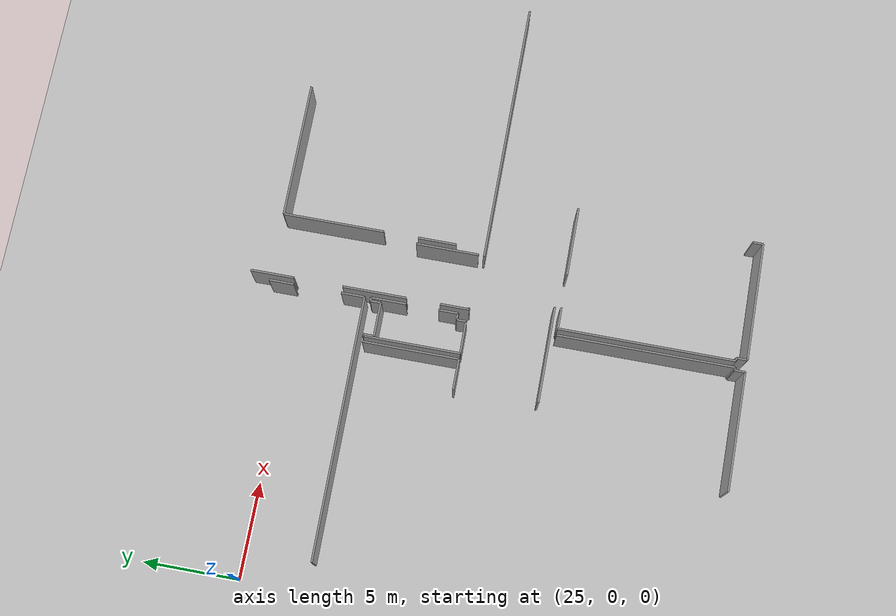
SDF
<sdf version="1.6">
 <world name="default">
  <model name="ground_plane">
   <static>1</static>
   <link name="link">
    <collision name="collision">
     <geometry><plane><normal>0 0 1</normal><size>100 100</size></plane></geometry>
     <surface><friction><ode><mu>100</mu><mu2>50</mu2></ode></friction></surface>
    </collision>
    <visual name="visual">
     <cast_shadows>0</cast_shadows>
     <geometry><plane><normal>0 0 1</normal><size>100 100</size></plane></geometry>
     <material>
      <script><uri>file://media/materials/scripts/gazebo.material</uri><name>Gazebo/Grey</name></script>
     </material>
    </visual>
   </link>
  </model>
  <model name="0510032192_A_40_1_203">
   <static>1</static>
   <link name="Wall_131">
    <collision name="Wall_131_Collision">
     <geometry><box><size>9.19214320664 0.1 2.5</size></box></geometry>
     <pose>4.59607160332 0 1.25 0 0 0</pose>
    </collision>
    <visual name="Wall_131_Visual">
     <pose>4.59607160332 0 1.25 0 0 0</pose>
     <geometry><box><size>9.19214320664 0.1 2.5</size></box></geometry>
     <material>
      <script><uri>file://media/materials/scripts/gazebo.material</uri><name>Gazebo/Grey</name></script>
      <ambient>1 1 1 1</ambient>
     </material>
    </visual>
    <pose>104.444642142 -36.9956471179 0 0 0 -1.57079632679</pose>
   </link>
   <link name="Wall_132">
    <collision name="Wall_132_Collision">
     <geometry><box><size>0.153780652869 0.1 2.5</size></box></geometry>
     <pose>0.0768903264344 0 1.25 0 0 0</pose>
    </collision>
    <visual name="Wall_132_Visual">
     <pose>0.0768903264344 0 1.25 0 0 0</pose>
     <geometry><box><size>0.153780652869 0.1 2.5</size></box></geometry>
     <material>
      <script><uri>file://media/materials/scripts/gazebo.material</uri><name>Gazebo/Grey</name></script>
      <ambient>1 1 1 1</ambient>
     </material>
    </visual>
    <pose>104.444642142 -46.1877903245 0 0 0 3.14159265359</pose>
   </link>
   <link name="Wall_133">
    <collision name="Wall_133_Collision">
     <geometry><box><size>0.528573334943 0.1 2.5</size></box></geometry>
     <pose>0.264286667472 0 1.25 0 0 0</pose>
    </collision>
    <visual name="Wall_133_Visual">
     <pose>0.264286667472 0 1.25 0 0 0</pose>
     <geometry><box><size>0.528573334943 0.1 2.5</size></box></geometry>
     <material>
      <script><uri>file://media/materials/scripts/gazebo.material</uri><name>Gazebo/Grey</name></script>
      <ambient>1 1 1 1</ambient>
     </material>
    </visual>
    <pose>104.290861489 -46.1877903245 0 0 0 -1.57079632679</pose>
   </link>
   <link name="Wall_134">
    <collision name="Wall_134_Collision">
     <geometry><box><size>6.16025778958 0.1 2.5</size></box></geometry>
     <pose>3.08012889479 0 1.25 0 0 0</pose>
    </collision>
    <visual name="Wall_134_Visual">
     <pose>3.08012889479 0 1.25 0 0 0</pose>
     <geometry><box><size>6.16025778958 0.1 2.5</size></box></geometry>
     <material>
      <script><uri>file://media/materials/scripts/gazebo.material</uri><name>Gazebo/Grey</name></script>
      <ambient>1 1 1 1</ambient>
     </material>
    </visual>
    <pose>104.290861489 -46.7163636595 0 0 0 -3.13996281451</pose>
   </link>
   <link name="Wall_135">
    <collision name="Wall_135_Collision">
     <geometry><box><size>0.559202374068 0.1 2.5</size></box></geometry>
     <pose>0.279601187034 0 1.25 0 0 0</pose>
    </collision>
    <visual name="Wall_135_Visual">
     <pose>0.279601187034 0 1.25 0 0 0</pose>
     <geometry><box><size>0.559202374068 0.1 2.5</size></box></geometry>
     <material>
      <script><uri>file://media/materials/scripts/gazebo.material</uri><name>Gazebo/Grey</name></script>
      <ambient>1 1 1 1</ambient>
     </material>
    </visual>
    <pose>104.934960951 -46.7436883209 0 0 0 1.57079632679</pose>
   </link>
   <link name="Wall_136">
    <collision name="Wall_136_Collision">
     <geometry><box><size>0.156322481842 0.1 2.5</size></box></geometry>
     <pose>0.0781612409209 0 1.25 0 0 0</pose>
    </collision>
    <visual name="Wall_136_Visual">
     <pose>0.0781612409209 0 1.25 0 0 0</pose>
     <geometry><box><size>0.156322481842 0.1 2.5</size></box></geometry>
     <material>
      <script><uri>file://media/materials/scripts/gazebo.material</uri><name>Gazebo/Grey</name></script>
      <ambient>1 1 1 1</ambient>
     </material>
    </visual>
    <pose>104.934960951 -46.1844859469 0 0 0 3.14159265359</pose>
   </link>
   <link name="Wall_137">
    <collision name="Wall_137_Collision">
     <geometry><box><size>9.18553445131 0.1 2.5</size></box></geometry>
     <pose>4.59276722566 0 1.25 0 0 0</pose>
    </collision>
    <visual name="Wall_137_Visual">
     <pose>4.59276722566 0 1.25 0 0 0</pose>
     <geometry><box><size>9.18553445131 0.1 2.5</size></box></geometry>
     <material>
      <script><uri>file://media/materials/scripts/gazebo.material</uri><name>Gazebo/Grey</name></script>
      <ambient>1 1 1 1</ambient>
     </material>
    </visual>
    <pose>104.778638469 -46.1844859469 0 0 0 1.57079632679</pose>
   </link>
   <link name="Wall_138">
    <collision name="Wall_138_Collision">
     <geometry><box><size>1.12310713174 0.1 2.5</size></box></geometry>
     <pose>0.561553565868 0 1.25 0 0 0</pose>
    </collision>
    <visual name="Wall_138_Visual">
     <pose>0.561553565868 0 1.25 0 0 0</pose>
     <geometry><box><size>1.12310713174 0.1 2.5</size></box></geometry>
     <material>
      <script><uri>file://media/materials/scripts/gazebo.material</uri><name>Gazebo/Grey</name></script>
      <ambient>1 1 1 1</ambient>
     </material>
    </visual>
    <pose>104.778638469 -36.9989514955 0 0 0 0.0</pose>
   </link>
   <link name="Wall_139">
    <collision name="Wall_139_Collision">
     <geometry><box><size>3.6059656726 0.1 2.5</size></box></geometry>
     <pose>1.8029828363 0 1.25 0 0 0</pose>
    </collision>
    <visual name="Wall_139_Visual">
     <pose>1.8029828363 0 1.25 0 0 0</pose>
     <geometry><box><size>3.6059656726 0.1 2.5</size></box></geometry>
     <material>
      <script><uri>file://media/materials/scripts/gazebo.material</uri><name>Gazebo/Grey</name></script>
      <ambient>1 1 1 1</ambient>
     </material>
    </visual>
    <pose>107.663995628 -36.9989514955 0 0 0 0.0</pose>
   </link>
   <link name="Wall_142">
    <collision name="Wall_142_Collision">
     <geometry><box><size>0.543443034435 0.1 2.5</size></box></geometry>
     <pose>0.271721517218 0 1.25 0 0 0</pose>
    </collision>
    <visual name="Wall_142_Visual">
     <pose>0.271721517218 0 1.25 0 0 0</pose>
     <geometry><box><size>0.543443034435 0.1 2.5</size></box></geometry>
     <material>
      <script><uri>file://media/materials/scripts/gazebo.material</uri><name>Gazebo/Grey</name></script>
      <ambient>1 1 1 1</ambient>
     </material>
    </visual>
    <pose>111.121899763 -46.1640242236 0 0 0 -1.57079632679</pose>
   </link>
   <link name="Wall_143">
    <collision name="Wall_143_Collision">
     <geometry><box><size>6.18704483794 0.1 2.5</size></box></geometry>
     <pose>3.09352241897 0 1.25 0 0 0</pose>
    </collision>
    <visual name="Wall_143_Visual">
     <pose>3.09352241897 0 1.25 0 0 0</pose>
     <geometry><box><size>6.18704483794 0.1 2.5</size></box></geometry>
     <material>
      <script><uri>file://media/materials/scripts/gazebo.material</uri><name>Gazebo/Grey</name></script>
      <ambient>1 1 1 1</ambient>
     </material>
    </visual>
    <pose>111.121899763 -46.7074672581 0 0 0 -3.13573828034</pose>
   </link>
   <link name="Wall_230">
    <collision name="Wall_230_Collision">
     <geometry><box><size>13.807342073 0.1 2.5</size></box></geometry>
     <pose>6.90367103649 0 1.25 0 0 0</pose>
    </collision>
    <visual name="Wall_230_Visual">
     <pose>6.90367103649 0 1.25 0 0 0</pose>
     <geometry><box><size>13.807342073 0.1 2.5</size></box></geometry>
     <material>
      <script><uri>file://media/materials/scripts/gazebo.material</uri><name>Gazebo/Grey</name></script>
      <ambient>1 1 1 1</ambient>
     </material>
    </visual>
    <pose>107.859208093 -32.6294203994 0 0 0 0.0</pose>
   </link>
   <link name="Wall_237">
    <collision name="Wall_237_Collision">
     <geometry><box><size>5.03892175615 0.1 2.5</size></box></geometry>
     <pose>2.51946087807 0 1.25 0 0 0</pose>
    </collision>
    <visual name="Wall_237_Visual">
     <pose>2.51946087807 0 1.25 0 0 0</pose>
     <geometry><box><size>5.03892175615 0.1 2.5</size></box></geometry>
     <material>
      <script><uri>file://media/materials/scripts/gazebo.material</uri><name>Gazebo/Grey</name></script>
      <ambient>1 1 1 1</ambient>
     </material>
    </visual>
    <pose>105.878614957 -36.6643197112 0 0 0 3.14159265359</pose>
   </link>
   <link name="Wall_369">
    <collision name="Wall_369_Collision">
     <geometry><box><size>5.00676761964 0.1 2.5</size></box></geometry>
     <pose>2.50338380982 0 1.25 0 0 0</pose>
    </collision>
    <visual name="Wall_369_Visual">
     <pose>2.50338380982 0 1.25 0 0 0</pose>
     <geometry><box><size>5.00676761964 0.1 2.5</size></box></geometry>
     <material>
      <script><uri>file://media/materials/scripts/gazebo.material</uri><name>Gazebo/Grey</name></script>
      <ambient>1 1 1 1</ambient>
     </material>
    </visual>
    <pose>102.311285085 -27.3138205596 0 0 0 -1.57079632679</pose>
   </link>
   <link name="Wall_370">
    <collision name="Wall_370_Collision">
     <geometry><box><size>1.58572000483 0.1 2.5</size></box></geometry>
     <pose>0.792860002415 0 1.25 0 0 0</pose>
    </collision>
    <visual name="Wall_370_Visual">
     <pose>0.792860002415 0 1.25 0 0 0</pose>
     <geometry><box><size>1.58572000483 0.1 2.5</size></box></geometry>
     <material>
      <script><uri>file://media/materials/scripts/gazebo.material</uri><name>Gazebo/Grey</name></script>
      <ambient>1 1 1 1</ambient>
     </material>
    </visual>
    <pose>102.311285085 -32.3205881792 0 0 0 3.14159265359</pose>
   </link>
   <link name="Wall_372">
    <collision name="Wall_372_Collision">
     <geometry><box><size>1.49739144802 0.1 2.5</size></box></geometry>
     <pose>0.748695724008 0 1.25 0 0 0</pose>
    </collision>
    <visual name="Wall_372_Visual">
     <pose>0.748695724008 0 1.25 0 0 0</pose>
     <geometry><box><size>1.49739144802 0.1 2.5</size></box></geometry>
     <material>
      <script><uri>file://media/materials/scripts/gazebo.material</uri><name>Gazebo/Grey</name></script>
      <ambient>1 1 1 1</ambient>
     </material>
    </visual>
    <pose>104.948432645 -32.3640534547 0 0 0 1.57079632679</pose>
   </link>
   <link name="Wall_373">
    <collision name="Wall_373_Collision">
     <geometry><box><size>3.33005013758 0.1 2.5</size></box></geometry>
     <pose>1.66502506879 0 1.25 0 0 0</pose>
    </collision>
    <visual name="Wall_373_Visual">
     <pose>1.66502506879 0 1.25 0 0 0</pose>
     <geometry><box><size>3.33005013758 0.1 2.5</size></box></geometry>
     <material>
      <script><uri>file://media/materials/scripts/gazebo.material</uri><name>Gazebo/Grey</name></script>
      <ambient>1 1 1 1</ambient>
     </material>
    </visual>
    <pose>104.948432645 -29.0984386816 0 0 0 1.57079632679</pose>
   </link>
   <link name="Wall_374">
    <collision name="Wall_374_Collision">
     <geometry><box><size>2.27493693087 0.1 2.5</size></box></geometry>
     <pose>1.13746846543 0 1.25 0 0 0</pose>
    </collision>
    <visual name="Wall_374_Visual">
     <pose>1.13746846543 0 1.25 0 0 0</pose>
     <geometry><box><size>2.27493693087 0.1 2.5</size></box></geometry>
     <material>
      <script><uri>file://media/materials/scripts/gazebo.material</uri><name>Gazebo/Grey</name></script>
      <ambient>1 1 1 1</ambient>
     </material>
    </visual>
    <pose>104.948432645 -23.2063520306 0 0 0 1.57079632679</pose>
   </link>
   <link name="Wall_376">
    <collision name="Wall_376_Collision">
     <geometry><box><size>3.26625023035 0.1 2.5</size></box></geometry>
     <pose>1.63312511518 0 1.25 0 0 0</pose>
    </collision>
    <visual name="Wall_376_Visual">
     <pose>1.63312511518 0 1.25 0 0 0</pose>
     <geometry><box><size>3.26625023035 0.1 2.5</size></box></geometry>
     <material>
      <script><uri>file://media/materials/scripts/gazebo.material</uri><name>Gazebo/Grey</name></script>
      <ambient>1 1 1 1</ambient>
     </material>
    </visual>
    <pose>107.881576188 -29.0652678135 0 0 0 -1.57079632679</pose>
   </link>
   <link name="Wall_377">
    <collision name="Wall_377_Collision">
     <geometry><box><size>0.0884309021404 0.1 2.5</size></box></geometry>
     <pose>0.0442154510702 0 1.25 0 0 0</pose>
    </collision>
    <visual name="Wall_377_Visual">
     <pose>0.0442154510702 0 1.25 0 0 0</pose>
     <geometry><box><size>0.0884309021404 0.1 2.5</size></box></geometry>
     <material>
      <script><uri>file://media/materials/scripts/gazebo.material</uri><name>Gazebo/Grey</name></script>
      <ambient>1 1 1 1</ambient>
     </material>
    </visual>
    <pose>105.030660812 -32.3315180438 0 0 0 -2.76482258148</pose>
   </link>
   <link name="Wall_378">
    <collision name="Wall_378_Collision">
     <geometry><box><size>2.01694129011 0.1 2.5</size></box></geometry>
     <pose>1.00847064505 0 1.25 0 0 0</pose>
    </collision>
    <visual name="Wall_378_Visual">
     <pose>1.00847064505 0 1.25 0 0 0</pose>
     <geometry><box><size>2.01694129011 0.1 2.5</size></box></geometry>
     <material>
      <script><uri>file://media/materials/scripts/gazebo.material</uri><name>Gazebo/Grey</name></script>
      <ambient>1 1 1 1</ambient>
     </material>
    </visual>
    <pose>108.205659382 -31.1152528802 0 0 0 1.57079632679</pose>
   </link>
   <link name="Wall_379">
    <collision name="Wall_379_Collision">
     <geometry><box><size>5.30466997528 0.1 2.5</size></box></geometry>
     <pose>2.65233498764 0 1.25 0 0 0</pose>
    </collision>
    <visual name="Wall_379_Visual">
     <pose>2.65233498764 0 1.25 0 0 0</pose>
     <geometry><box><size>5.30466997528 0.1 2.5</size></box></geometry>
     <material>
      <script><uri>file://media/materials/scripts/gazebo.material</uri><name>Gazebo/Grey</name></script>
      <ambient>1 1 1 1</ambient>
     </material>
    </visual>
    <pose>108.205659382 -27.2909440988 0 0 0 1.57079632679</pose>
   </link>
   <link name="Wall_380">
    <collision name="Wall_380_Collision">
     <geometry><box><size>7.11775658175 0.1 2.5</size></box></geometry>
     <pose>3.55887829087 0 1.25 0 0 0</pose>
    </collision>
    <visual name="Wall_380_Visual">
     <pose>3.55887829087 0 1.25 0 0 0</pose>
     <geometry><box><size>7.11775658175 0.1 2.5</size></box></geometry>
     <material>
      <script><uri>file://media/materials/scripts/gazebo.material</uri><name>Gazebo/Grey</name></script>
      <ambient>1 1 1 1</ambient>
     </material>
    </visual>
    <pose>108.205659382 -21.9862741235 0 0 0 0.0</pose>
   </link>
   <link name="Wall_406">
    <collision name="Wall_406_Collision">
     <geometry><box><size>5.02837316591 0.1 2.5</size></box></geometry>
     <pose>2.51418658296 0 1.25 0 0 0</pose>
    </collision>
    <visual name="Wall_406_Visual">
     <pose>2.51418658296 0 1.25 0 0 0</pose>
     <geometry><box><size>5.02837316591 0.1 2.5</size></box></geometry>
     <material>
      <script><uri>file://media/materials/scripts/gazebo.material</uri><name>Gazebo/Grey</name></script>
      <ambient>1 1 1 1</ambient>
     </material>
    </visual>
    <pose>102.606137246 -32.3343140557 0 0 0 1.57079632679</pose>
   </link>
   <link name="Wall_407">
    <collision name="Wall_407_Collision">
     <geometry><box><size>0.080321795548 0.1 2.5</size></box></geometry>
     <pose>0.040160897774 0 1.25 0 0 0</pose>
    </collision>
    <visual name="Wall_407_Visual">
     <pose>0.040160897774 0 1.25 0 0 0</pose>
     <geometry><box><size>0.080321795548 0.1 2.5</size></box></geometry>
     <material>
      <script><uri>file://media/materials/scripts/gazebo.material</uri><name>Gazebo/Grey</name></script>
      <ambient>1 1 1 1</ambient>
     </material>
    </visual>
    <pose>102.606137246 -27.3059408898 0 0 0 0.0</pose>
   </link>
   <link name="Wall_408">
    <collision name="Wall_408_Collision">
     <geometry><box><size>0.543188851538 0.1 2.5</size></box></geometry>
     <pose>0.271594425769 0 1.25 0 0 0</pose>
    </collision>
    <visual name="Wall_408_Visual">
     <pose>0.271594425769 0 1.25 0 0 0</pose>
     <geometry><box><size>0.543188851538 0.1 2.5</size></box></geometry>
     <material>
      <script><uri>file://media/materials/scripts/gazebo.material</uri><name>Gazebo/Grey</name></script>
      <ambient>1 1 1 1</ambient>
     </material>
    </visual>
    <pose>102.686459042 -27.3059408898 0 0 0 -1.57079632679</pose>
   </link>
   <link name="Wall_409">
    <collision name="Wall_409_Collision">
     <geometry><box><size>1.77991573837 0.1 2.5</size></box></geometry>
     <pose>0.889957869185 0 1.25 0 0 0</pose>
    </collision>
    <visual name="Wall_409_Visual">
     <pose>0.889957869185 0 1.25 0 0 0</pose>
     <geometry><box><size>1.77991573837 0.1 2.5</size></box></geometry>
     <material>
      <script><uri>file://media/materials/scripts/gazebo.material</uri><name>Gazebo/Grey</name></script>
      <ambient>1 1 1 1</ambient>
     </material>
    </visual>
    <pose>102.686459042 -27.8491297413 0 0 0 0.0</pose>
   </link>
   <link name="Wall_410">
    <collision name="Wall_410_Collision">
     <geometry><box><size>0.534800815927 0.1 2.5</size></box></geometry>
     <pose>0.267400407964 0 1.25 0 0 0</pose>
    </collision>
    <visual name="Wall_410_Visual">
     <pose>0.267400407964 0 1.25 0 0 0</pose>
     <geometry><box><size>0.534800815927 0.1 2.5</size></box></geometry>
     <material>
      <script><uri>file://media/materials/scripts/gazebo.material</uri><name>Gazebo/Grey</name></script>
      <ambient>1 1 1 1</ambient>
     </material>
    </visual>
    <pose>104.46637478 -27.8491297413 0 0 0 1.57079632679</pose>
   </link>
   <link name="Wall_411">
    <collision name="Wall_411_Collision">
     <geometry><box><size>0.175513290588 0.1 2.5</size></box></geometry>
     <pose>0.0877566452941 0 1.25 0 0 0</pose>
    </collision>
    <visual name="Wall_411_Visual">
     <pose>0.0877566452941 0 1.25 0 0 0</pose>
     <geometry><box><size>0.175513290588 0.1 2.5</size></box></geometry>
     <material>
      <script><uri>file://media/materials/scripts/gazebo.material</uri><name>Gazebo/Grey</name></script>
      <ambient>1 1 1 1</ambient>
     </material>
    </visual>
    <pose>104.46637478 -27.3143289254 0 0 0 0.0</pose>
   </link>
   <link name="Wall_412">
    <collision name="Wall_412_Collision">
     <geometry><box><size>1.82998976914 0.1 2.5</size></box></geometry>
     <pose>0.914994884569 0 1.25 0 0 0</pose>
    </collision>
    <visual name="Wall_412_Visual">
     <pose>0.914994884569 0 1.25 0 0 0</pose>
     <geometry><box><size>1.82998976914 0.1 2.5</size></box></geometry>
     <material>
      <script><uri>file://media/materials/scripts/gazebo.material</uri><name>Gazebo/Grey</name></script>
      <ambient>1 1 1 1</ambient>
     </material>
    </visual>
    <pose>104.641888071 -27.3143289254 0 0 0 -1.57079632679</pose>
   </link>
   <link name="Wall_413">
    <collision name="Wall_413_Collision">
     <geometry><box><size>0.992584213971 0.1 2.5</size></box></geometry>
     <pose>0.496292106986 0 1.25 0 0 0</pose>
    </collision>
    <visual name="Wall_413_Visual">
     <pose>0.496292106986 0 1.25 0 0 0</pose>
     <geometry><box><size>0.992584213971 0.1 2.5</size></box></geometry>
     <material>
      <script><uri>file://media/materials/scripts/gazebo.material</uri><name>Gazebo/Grey</name></script>
      <ambient>1 1 1 1</ambient>
     </material>
    </visual>
    <pose>104.641888071 -30.8475982893 0 0 0 -1.57079632679</pose>
   </link>
   <link name="Wall_414">
    <collision name="Wall_414_Collision">
     <geometry><box><size>0.342638545565 0.1 2.5</size></box></geometry>
     <pose>0.171319272783 0 1.25 0 0 0</pose>
    </collision>
    <visual name="Wall_414_Visual">
     <pose>0.171319272783 0 1.25 0 0 0</pose>
     <geometry><box><size>0.342638545565 0.1 2.5</size></box></geometry>
     <material>
      <script><uri>file://media/materials/scripts/gazebo.material</uri><name>Gazebo/Grey</name></script>
      <ambient>1 1 1 1</ambient>
     </material>
    </visual>
    <pose>104.641888071 -31.8401825033 0 0 0 3.14159265359</pose>
   </link>
   <link name="Wall_415">
    <collision name="Wall_415_Collision">
     <geometry><box><size>0.478499304174 0.1 2.5</size></box></geometry>
     <pose>0.239249652087 0 1.25 0 0 0</pose>
    </collision>
    <visual name="Wall_415_Visual">
     <pose>0.239249652087 0 1.25 0 0 0</pose>
     <geometry><box><size>0.478499304174 0.1 2.5</size></box></geometry>
     <material>
      <script><uri>file://media/materials/scripts/gazebo.material</uri><name>Gazebo/Grey</name></script>
      <ambient>1 1 1 1</ambient>
     </material>
    </visual>
    <pose>104.299249525 -31.8401825033 0 0 0 -1.57079632679</pose>
   </link>
   <link name="Wall_416">
    <collision name="Wall_416_Collision">
     <geometry><box><size>1.69318444249 0.1 2.5</size></box></geometry>
     <pose>0.846592221244 0 1.25 0 0 0</pose>
    </collision>
    <visual name="Wall_416_Visual">
     <pose>0.846592221244 0 1.25 0 0 0</pose>
     <geometry><box><size>1.69318444249 0.1 2.5</size></box></geometry>
     <material>
      <script><uri>file://media/materials/scripts/gazebo.material</uri><name>Gazebo/Grey</name></script>
      <ambient>1 1 1 1</ambient>
     </material>
    </visual>
    <pose>104.299249525 -32.3186818075 0 0 0 -3.13236006801</pose>
   </link>
   <link name="Wall_421">
    <collision name="Wall_421_Collision">
     <geometry><box><size>1.29989133681 0.1 2.5</size></box></geometry>
     <pose>0.649945668406 0 1.25 0 0 0</pose>
    </collision>
    <visual name="Wall_421_Visual">
     <pose>0.649945668406 0 1.25 0 0 0</pose>
     <geometry><box><size>1.29989133681 0.1 2.5</size></box></geometry>
     <material>
      <script><uri>file://media/materials/scripts/gazebo.material</uri><name>Gazebo/Grey</name></script>
      <ambient>1 1 1 1</ambient>
     </material>
    </visual>
    <pose>104.612784129 -21.9744546188 0 0 0 -1.57079632679</pose>
   </link>
   <link name="Wall_422">
    <collision name="Wall_422_Collision">
     <geometry><box><size>1.22084045575 0.1 2.5</size></box></geometry>
     <pose>0.610420227875 0 1.25 0 0 0</pose>
    </collision>
    <visual name="Wall_422_Visual">
     <pose>0.610420227875 0 1.25 0 0 0</pose>
     <geometry><box><size>1.22084045575 0.1 2.5</size></box></geometry>
     <material>
      <script><uri>file://media/materials/scripts/gazebo.material</uri><name>Gazebo/Grey</name></script>
      <ambient>1 1 1 1</ambient>
     </material>
    </visual>
    <pose>104.612784129 -25.7580941366 0 0 0 -1.57079632679</pose>
   </link>
   <link name="Wall_423">
    <collision name="Wall_423_Collision">
     <geometry><box><size>13.6606310777 0.1 2.5</size></box></geometry>
     <pose>6.83031553885 0 1.25 0 0 0</pose>
    </collision>
    <visual name="Wall_423_Visual">
     <pose>6.83031553885 0 1.25 0 0 0</pose>
     <geometry><box><size>13.6606310777 0.1 2.5</size></box></geometry>
     <material>
      <script><uri>file://media/materials/scripts/gazebo.material</uri><name>Gazebo/Grey</name></script>
      <ambient>1 1 1 1</ambient>
     </material>
    </visual>
    <pose>104.612784129 -26.9789345924 0 0 0 -3.1381782687</pose>
   </link>
   <pose>-64.55 23.3936883209 0 0 0 0</pose>
  </model>
 </world>
</sdf>
